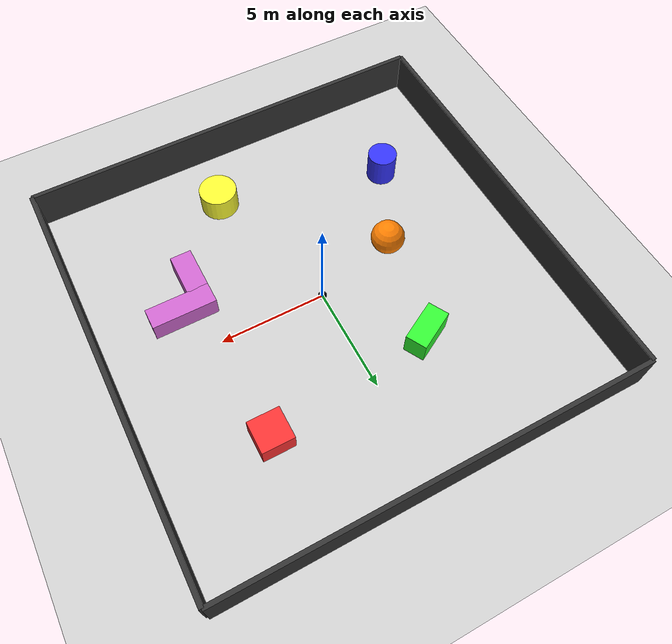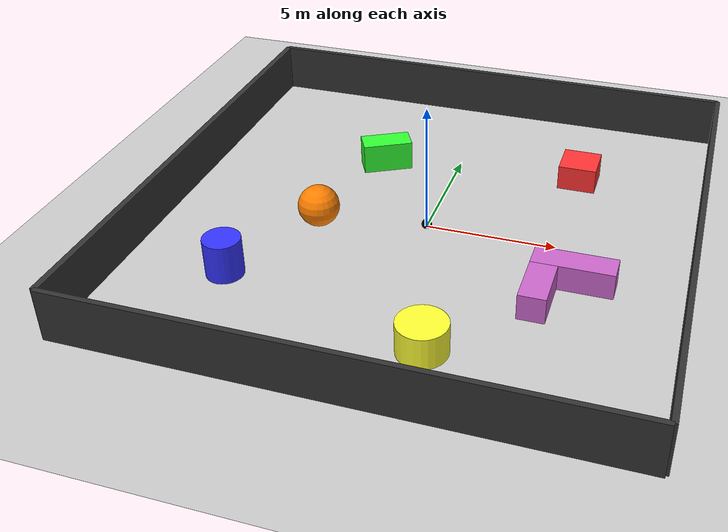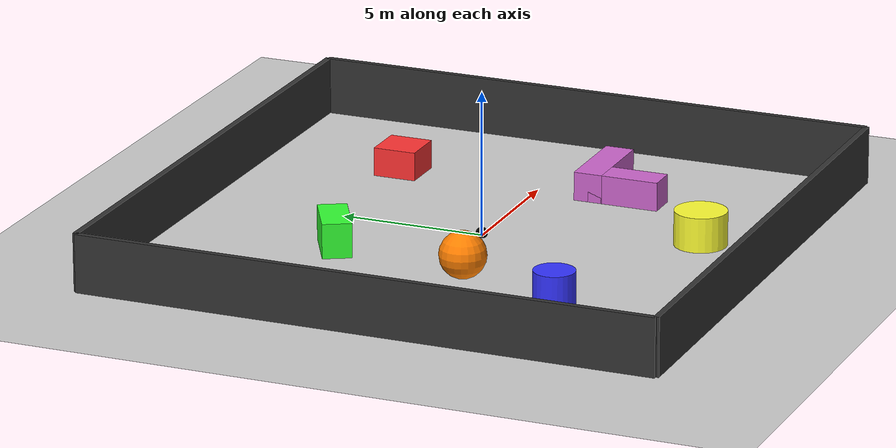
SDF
<?xml version="1.0" ?>
<sdf version="1.6">
  <world name="obstacle_world">
    <!-- A global light source -->
    <include>
      <uri>model://sun</uri>
    </include>

    <!-- A ground plane -->
    <include>
      <uri>model://ground_plane</uri>
    </include>

    <!-- World boundaries (20m x 20m) -->
    <!-- North Wall -->
    <model name="north_wall">
      <static>true</static>
      <link name="link">
        <collision name="collision">
          <geometry>
            <box>
              <size>20 0.2 2</size>
            </box>
          </geometry>
        </collision>
        <visual name="visual">
          <geometry>
            <box>
              <size>20 0.2 2</size>
            </box>
          </geometry>
          <material>
            <ambient>0.2 0.2 0.2 1</ambient>
            <diffuse>0.2 0.2 0.2 1</diffuse>
          </material>
        </visual>
        <pose>0 10 1 0 0 0</pose>
      </link>
    </model>

    <!-- South Wall -->
    <model name="south_wall">
      <static>true</static>
      <link name="link">
        <collision name="collision">
          <geometry>
            <box>
              <size>20 0.2 2</size>
            </box>
          </geometry>
        </collision>
        <visual name="visual">
          <geometry>
            <box>
              <size>20 0.2 2</size>
            </box>
          </geometry>
          <material>
            <ambient>0.2 0.2 0.2 1</ambient>
            <diffuse>0.2 0.2 0.2 1</diffuse>
          </material>
        </visual>
        <pose>0 -10 1 0 0 0</pose>
      </link>
    </model>

    <!-- East Wall -->
    <model name="east_wall">
      <static>true</static>
      <link name="link">
        <collision name="collision">
          <geometry>
            <box>
              <size>0.2 20 2</size>
            </box>
          </geometry>
        </collision>
        <visual name="visual">
          <geometry>
            <box>
              <size>0.2 20 2</size>
            </box>
          </geometry>
          <material>
            <ambient>0.2 0.2 0.2 1</ambient>
            <diffuse>0.2 0.2 0.2 1</diffuse>
          </material>
        </visual>
        <pose>10 0 1 0 0 0</pose>
      </link>
    </model>

    <!-- West Wall -->
    <model name="west_wall">
      <static>true</static>
      <link name="link">
        <collision name="collision">
          <geometry>
            <box>
              <size>0.2 20 2</size>
            </box>
          </geometry>
        </collision>
        <visual name="visual">
          <geometry>
            <box>
              <size>0.2 20 2</size>
            </box>
          </geometry>
          <material>
            <ambient>0.2 0.2 0.2 1</ambient>
            <diffuse>0.2 0.2 0.2 1</diffuse>
          </material>
        </visual>
        <pose>-10 0 1 0 0 0</pose>
      </link>
    </model>

    <!-- Box obstacle 1 -->
    <model name="box1">
      <static>true</static>
      <link name="link">
        <collision name="collision">
          <geometry>
            <box>
              <size>1.5 1.5 1.0</size>
            </box>
          </geometry>
        </collision>
        <visual name="visual">
          <geometry>
            <box>
              <size>1.5 1.5 1.0</size>
            </box>
          </geometry>
          <material>
            <ambient>1.0 0.2 0.2 1</ambient>
            <diffuse>1.0 0.2 0.2 1</diffuse>
          </material>
        </visual>
        <pose>5 5 0.5 0 0 0</pose>
      </link>
    </model>

    <!-- Box obstacle 2 -->
    <model name="box2">
      <static>true</static>
      <link name="link">
        <collision name="collision">
          <geometry>
            <box>
              <size>2.0 1.0 1.2</size>
            </box>
          </geometry>
        </collision>
        <visual name="visual">
          <geometry>
            <box>
              <size>2.0 1.0 1.2</size>
            </box>
          </geometry>
          <material>
            <ambient>0.2 1.0 0.2 1</ambient>
            <diffuse>0.2 1.0 0.2 1</diffuse>
          </material>
        </visual>
        <pose>-3 4 0.6 0 0 0.5</pose>
      </link>
    </model>

    <!-- Cylinder obstacle 1 -->
    <model name="cylinder1">
      <static>true</static>
      <link name="link">
        <collision name="collision">
          <geometry>
            <cylinder>
              <radius>0.7</radius>
              <length>1.5</length>
            </cylinder>
          </geometry>
        </collision>
        <visual name="visual">
          <geometry>
            <cylinder>
              <radius>0.7</radius>
              <length>1.5</length>
            </cylinder>
          </geometry>
          <material>
            <ambient>0.2 0.2 1.0 1</ambient>
            <diffuse>0.2 0.2 1.0 1</diffuse>
          </material>
        </visual>
        <pose>-6 -5 0.75 0 0 0</pose>
      </link>
    </model>

    <!-- Cylinder obstacle 2 -->
    <model name="cylinder2">
      <static>true</static>
      <link name="link">
        <collision name="collision">
          <geometry>
            <cylinder>
              <radius>0.9</radius>
              <length>1.2</length>
            </cylinder>
          </geometry>
        </collision>
        <visual name="visual">
          <geometry>
            <cylinder>
              <radius>0.9</radius>
              <length>1.2</length>
            </cylinder>
          </geometry>
          <material>
            <ambient>1.0 1.0 0.2 1</ambient>
            <diffuse>1.0 1.0 0.2 1</diffuse>
          </material>
        </visual>
        <pose>2 -7 0.6 0 0 0</pose>
      </link>
    </model>

    <!-- Sphere obstacle -->
    <model name="sphere1">
      <static>true</static>
      <link name="link">
        <collision name="collision">
          <geometry>
            <sphere>
              <radius>0.8</radius>
            </sphere>
          </geometry>
        </collision>
        <visual name="visual">
          <geometry>
            <sphere>
              <radius>0.8</radius>
            </sphere>
          </geometry>
          <material>
            <ambient>1.0 0.5 0.0 1</ambient>
            <diffuse>1.0 0.5 0.0 1</diffuse>
          </material>
        </visual>
        <pose>-4 -1 0.8 0 0 0</pose>
      </link>
    </model>

    <!-- Complex obstacle (L-shape) -->
    <model name="complex_obstacle">
      <static>true</static>
      <!-- Horizontal part -->
      <link name="h_link">
        <collision name="collision">
          <geometry>
            <box>
              <size>3.0 1.0 1.0</size>
            </box>
          </geometry>
        </collision>
        <visual name="visual">
          <geometry>
            <box>
              <size>3.0 1.0 1.0</size>
            </box>
          </geometry>
          <material>
            <ambient>0.8 0.4 0.8 1</ambient>
            <diffuse>0.8 0.4 0.8 1</diffuse>
          </material>
        </visual>
        <pose>6 -2 0.5 0 0 0</pose>
      </link>
      <!-- Vertical part -->
      <link name="v_link">
        <collision name="collision">
          <geometry>
            <box>
              <size>1.0 2.5 1.0</size>
            </box>
          </geometry>
        </collision>
        <visual name="visual">
          <geometry>
            <box>
              <size>1.0 2.5 1.0</size>
            </box>
          </geometry>
          <material>
            <ambient>0.8 0.4 0.8 1</ambient>
            <diffuse>0.8 0.4 0.8 1</diffuse>
          </material>
        </visual>
        <pose>5 -3.25 0.5 0 0 0</pose>
      </link>
    </model>

    <!-- Physics settings -->
    <physics type="ode">
      <real_time_update_rate>1000.0</real_time_update_rate>
      <max_step_size>0.001</max_step_size>
      <real_time_factor>1</real_time_factor>
      <ode>
        <solver>
          <type>quick</type>
          <iters>50</iters>
          <precon_iters>0</precon_iters>
          <sor>1.4</sor>
        </solver>
        <constraints>
          <cfm>0.0</cfm>
          <erp>0.2</erp>
          <contact_max_correcting_vel>10.0</contact_max_correcting_vel>
          <contact_surface_layer>0.01</contact_surface_layer>
        </constraints>
      </ode>
    </physics>

    <!-- The origin marker for visual reference -->
    <model name="origin_marker">
      <static>true</static>
      <link name="link">
        <visual name="visual">
          <geometry>
            <sphere>
              <radius>0.2</radius>
            </sphere>
          </geometry>
          <material>
            <ambient>0 0 0 1</ambient>
            <diffuse>0 0 0 1</diffuse>
          </material>
        </visual>
        <pose>0 0 0.1 0 0 0</pose>
      </link>
    </model>
  </world>
</sdf>
